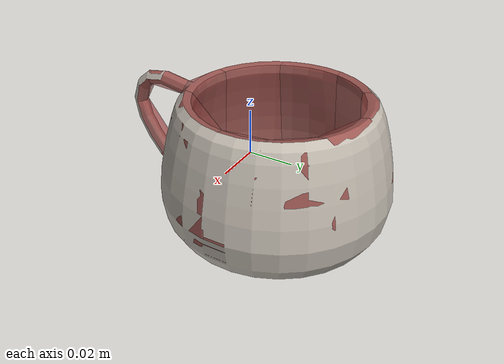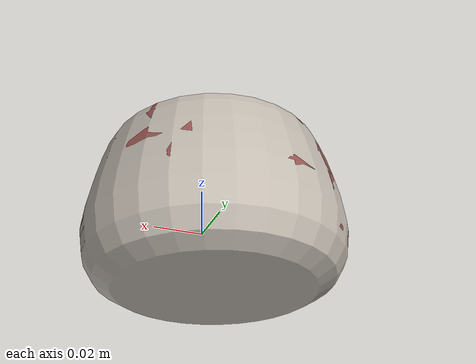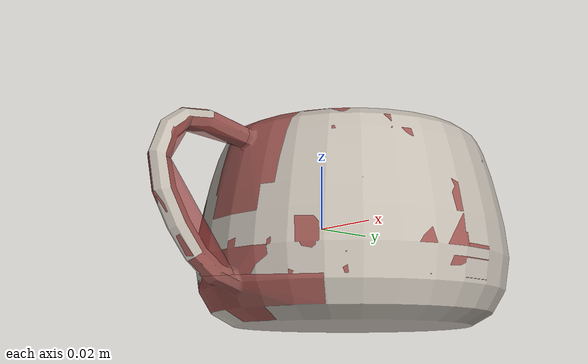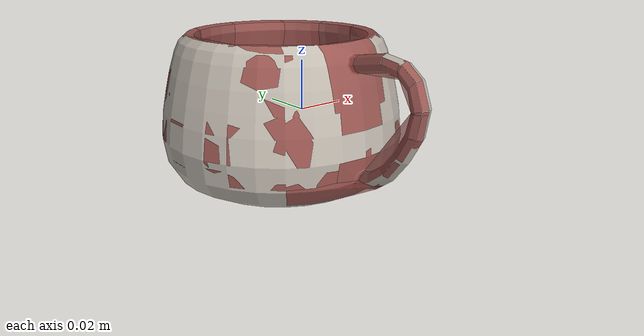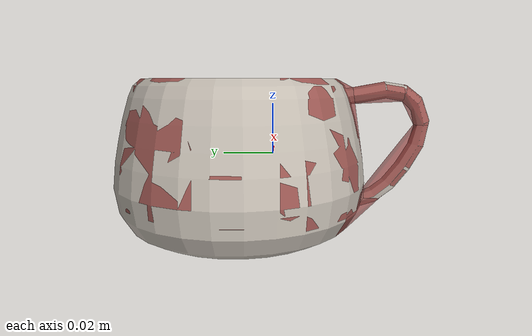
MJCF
<mujoco model="mug_17">
  <asset>
    <mesh file="visual/model_normalized_0.obj" name="model_normalized_0_vis" scale="0.125 0.125 0.125" refquat="0.7071067811865472 0.0 0.0 0.7071067811865476"/>
    <texture type="2d" name="image0" file="visual/image0.png"/>
    <material name="blinn1SG.001" texture="image0" specular="0.5" shininess="0.359999993"/>
    <mesh file="collision/collision_mesh_collision_0.obj" name="mug_collision_mesh_0" scale="0.125 0.125 0.125" refquat="0.7071067811865472 0.0 0.0 0.7071067811865476"/>
    <mesh file="collision/collision_mesh_collision_1.obj" name="mug_collision_mesh_1" scale="0.125 0.125 0.125" refquat="0.7071067811865472 0.0 0.0 0.7071067811865476"/>
    <mesh file="collision/collision_mesh_collision_2.obj" name="mug_collision_mesh_2" scale="0.125 0.125 0.125" refquat="0.7071067811865472 0.0 0.0 0.7071067811865476"/>
    <mesh file="collision/collision_mesh_collision_3.obj" name="mug_collision_mesh_3" scale="0.125 0.125 0.125" refquat="0.7071067811865472 0.0 0.0 0.7071067811865476"/>
    <mesh file="collision/collision_mesh_collision_4.obj" name="mug_collision_mesh_4" scale="0.125 0.125 0.125" refquat="0.7071067811865472 0.0 0.0 0.7071067811865476"/>
    <mesh file="collision/collision_mesh_collision_5.obj" name="mug_collision_mesh_5" scale="0.125 0.125 0.125" refquat="0.7071067811865472 0.0 0.0 0.7071067811865476"/>
    <mesh file="collision/collision_mesh_collision_6.obj" name="mug_collision_mesh_6" scale="0.125 0.125 0.125" refquat="0.7071067811865472 0.0 0.0 0.7071067811865476"/>
    <mesh file="collision/collision_mesh_collision_7.obj" name="mug_collision_mesh_7" scale="0.125 0.125 0.125" refquat="0.7071067811865472 0.0 0.0 0.7071067811865476"/>
    <mesh file="collision/collision_mesh_collision_8.obj" name="mug_collision_mesh_8" scale="0.125 0.125 0.125" refquat="0.7071067811865472 0.0 0.0 0.7071067811865476"/>
    <mesh file="collision/collision_mesh_collision_9.obj" name="mug_collision_mesh_9" scale="0.125 0.125 0.125" refquat="0.7071067811865472 0.0 0.0 0.7071067811865476"/>
    <mesh file="collision/collision_mesh_collision_10.obj" name="mug_collision_mesh_10" scale="0.125 0.125 0.125" refquat="0.7071067811865472 0.0 0.0 0.7071067811865476"/>
    <mesh file="collision/collision_mesh_collision_11.obj" name="mug_collision_mesh_11" scale="0.125 0.125 0.125" refquat="0.7071067811865472 0.0 0.0 0.7071067811865476"/>
    <mesh file="collision/collision_mesh_collision_12.obj" name="mug_collision_mesh_12" scale="0.125 0.125 0.125" refquat="0.7071067811865472 0.0 0.0 0.7071067811865476"/>
    <mesh file="collision/collision_mesh_collision_13.obj" name="mug_collision_mesh_13" scale="0.125 0.125 0.125" refquat="0.7071067811865472 0.0 0.0 0.7071067811865476"/>
    <mesh file="collision/collision_mesh_collision_14.obj" name="mug_collision_mesh_14" scale="0.125 0.125 0.125" refquat="0.7071067811865472 0.0 0.0 0.7071067811865476"/>
    <mesh file="collision/collision_mesh_collision_15.obj" name="mug_collision_mesh_15" scale="0.125 0.125 0.125" refquat="0.7071067811865472 0.0 0.0 0.7071067811865476"/>
  </asset>
  <default>
    <default class="region">
      <geom group="1" conaffinity="0" contype="0" rgba="0 1 0 0"/>
    </default>
    <default class="collision">
      <geom group="0" rgba="0.5 0 0 0.5" density="1000.0"/>
    </default>
  </default>
  <worldbody>
    <body>
      <body name="object">
        <geom solimp="0.998 0.998 0.001" solref="0.001 1" density="100" friction="0.95 0.3 0.1" type="mesh" mesh="model_normalized_0_vis" conaffinity="0" contype="0" group="1" material="blinn1SG.001"/>
        <geom class="region" name="reg_bbox" type="box" pos="9.106249999994709e-07 -4.806250000002898e-07 1.6718749999995036e-06" size="0.049145648125 0.062498431875 0.029785118125000003"/>
        <geom mesh="mug_collision_mesh_0" type="mesh" class="collision"/>
        <geom mesh="mug_collision_mesh_1" type="mesh" class="collision"/>
        <geom mesh="mug_collision_mesh_2" type="mesh" class="collision"/>
        <geom mesh="mug_collision_mesh_3" type="mesh" class="collision"/>
        <geom mesh="mug_collision_mesh_4" type="mesh" class="collision"/>
        <geom mesh="mug_collision_mesh_5" type="mesh" class="collision"/>
        <geom mesh="mug_collision_mesh_6" type="mesh" class="collision"/>
        <geom mesh="mug_collision_mesh_7" type="mesh" class="collision"/>
        <geom mesh="mug_collision_mesh_8" type="mesh" class="collision"/>
        <geom mesh="mug_collision_mesh_9" type="mesh" class="collision"/>
        <geom mesh="mug_collision_mesh_10" type="mesh" class="collision"/>
        <geom mesh="mug_collision_mesh_11" type="mesh" class="collision"/>
        <geom mesh="mug_collision_mesh_12" type="mesh" class="collision"/>
        <geom mesh="mug_collision_mesh_13" type="mesh" class="collision"/>
        <geom mesh="mug_collision_mesh_14" type="mesh" class="collision"/>
        <geom mesh="mug_collision_mesh_15" type="mesh" class="collision"/>
        <geom rgba="0 0 0 0" size="0.038 0.020" pos="0 0.016 0.0" type="cylinder" name="liquid" class="region"/>
        <geom rgba="0 0 0 0 " size="0.034 0.023" pos="0 0.014 0.005" type="cylinder" name="reg_int" class="region"/>
      </body>
    </body>
  </worldbody>
</mujoco>
